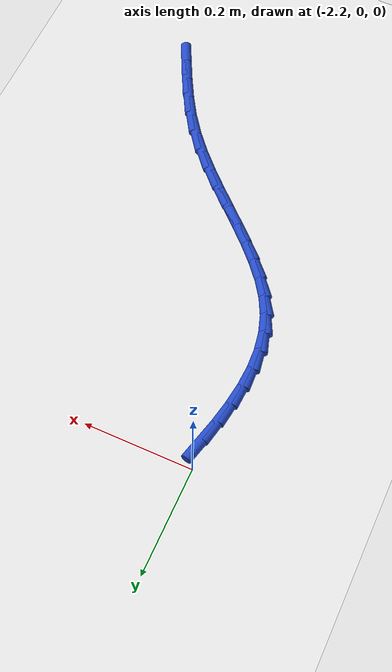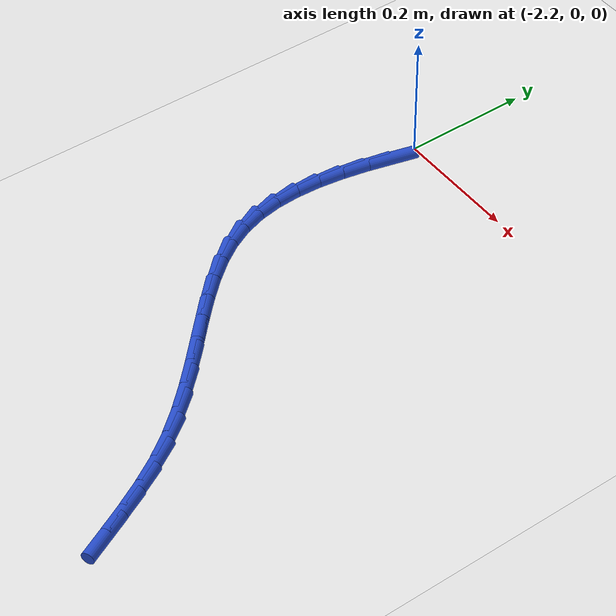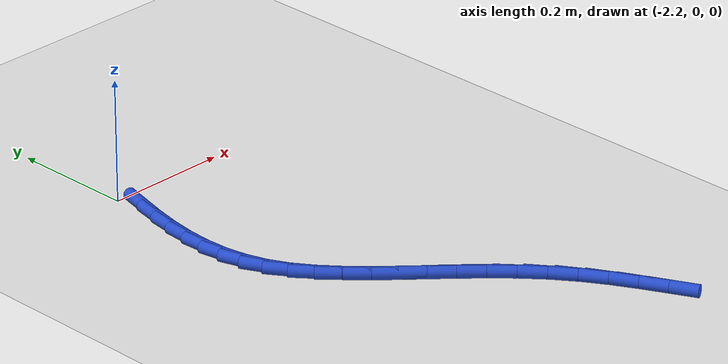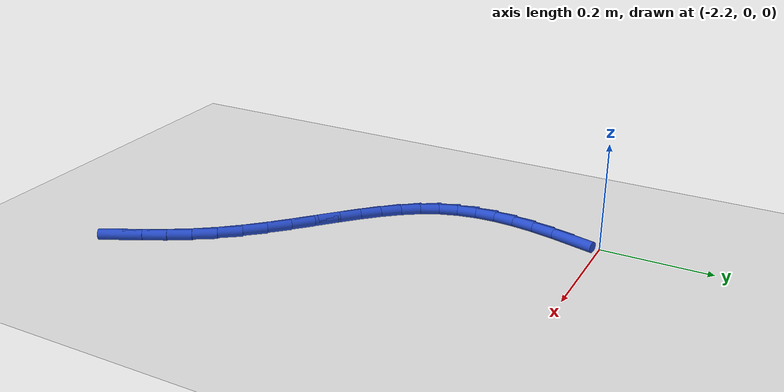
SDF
<sdf version="1.6">
 <world name="default">
  <model name="ground_plane">
   <static>1</static>
   <link name="link">
    <collision name="collision">
     <geometry><plane><normal>0 0 1</normal><size>100 100</size></plane></geometry>
     <surface><friction><ode><mu>100</mu><mu2>50</mu2></ode></friction></surface>
    </collision>
    <visual name="visual">
     <cast_shadows>0</cast_shadows>
     <geometry><plane><normal>0 0 1</normal><size>100 100</size></plane></geometry>
     <material>
      <script><uri>file://media/materials/scripts/gazebo.material</uri><name>Gazebo/WhiteGlow</name></script>
     </material>
    </visual>
   </link>
  </model>
  <model name="line">
   <link name="link_84">
    <pose>-2.194438719372233 -0.04734307229230232 0.01 0 1.57 1.3231978027596123</pose>
    <collision name="collision">
     <geometry><cylinder><radius>0.01</radius><length>0.08</length></cylinder></geometry>
    </collision>
    <visual name="visual">
     <material>
      <script><name>Gazebo/Blue</name><uri>file://media/materials/scripts/gazebo.material</uri></script>
     </material>
     <geometry><cylinder><radius>0.01</radius><length>0.08</length></cylinder></geometry>
    </visual>
   </link>
   <link name="link_85">
    <pose>-2.204924522512006 -0.08882411420764234 0.01 0 1.57 1.3742435573194094</pose>
    <collision name="collision">
     <geometry><cylinder><radius>0.01</radius><length>0.08</length></cylinder></geometry>
    </collision>
    <visual name="visual">
     <material>
      <script><name>Gazebo/Blue</name><uri>file://media/materials/scripts/gazebo.material</uri></script>
     </material>
     <geometry><cylinder><radius>0.01</radius><length>0.08</length></cylinder></geometry>
    </visual>
   </link>
   <link name="link_86">
    <pose>-2.213015938813257 -0.12945924962880215 0.01 0 1.57 1.4398386977272242</pose>
    <collision name="collision">
     <geometry><cylinder><radius>0.01</radius><length>0.08</length></cylinder></geometry>
    </collision>
    <visual name="visual">
     <material>
      <script><name>Gazebo/Blue</name><uri>file://media/materials/scripts/gazebo.material</uri></script>
     </material>
     <geometry><cylinder><radius>0.01</radius><length>0.08</length></cylinder></geometry>
    </visual>
   </link>
   <link name="link_87">
    <pose>-2.218236656657059 -0.16909679325042232 0.01 0 1.57 1.5221521603099335</pose>
    <collision name="collision">
     <geometry><cylinder><radius>0.01</radius><length>0.08</length></cylinder></geometry>
    </collision>
    <visual name="visual">
     <material>
      <script><name>Gazebo/Blue</name><uri>file://media/materials/scripts/gazebo.material</uri></script>
     </material>
     <geometry><cylinder><radius>0.01</radius><length>0.08</length></cylinder></geometry>
    </visual>
   </link>
   <link name="link_88">
    <pose>-2.220110364424489 -0.20758505976714353 0.01 0 1.57 -1.518417411636664</pose>
    <collision name="collision">
     <geometry><cylinder><radius>0.01</radius><length>0.08</length></cylinder></geometry>
    </collision>
    <visual name="visual">
     <material>
      <script><name>Gazebo/Blue</name><uri>file://media/materials/scripts/gazebo.material</uri></script>
     </material>
     <geometry><cylinder><radius>0.01</radius><length>0.08</length></cylinder></geometry>
    </visual>
   </link>
   <link name="link_89">
    <pose>-2.218160750496619 -0.2447723638736072 0.01 0 1.57 -1.3976678970668792</pose>
    <collision name="collision">
     <geometry><cylinder><radius>0.01</radius><length>0.08</length></cylinder></geometry>
    </collision>
    <visual name="visual">
     <material>
      <script><name>Gazebo/Blue</name><uri>file://media/materials/scripts/gazebo.material</uri></script>
     </material>
     <geometry><cylinder><radius>0.01</radius><length>0.08</length></cylinder></geometry>
    </visual>
   </link>
   <link name="link_90">
    <pose>-2.2119115032545253 -0.28050702026445257 0.01 0 1.57 -1.2583452974171603</pose>
    <collision name="collision">
     <geometry><cylinder><radius>0.01</radius><length>0.08</length></cylinder></geometry>
    </collision>
    <visual name="visual">
     <material>
      <script><name>Gazebo/Blue</name><uri>file://media/materials/scripts/gazebo.material</uri></script>
     </material>
     <geometry><cylinder><radius>0.01</radius><length>0.08</length></cylinder></geometry>
    </visual>
   </link>
   <link name="link_91">
    <pose>-2.2008863110792816 -0.31463734363432094 0.01 0 1.57 -1.1090080656844432</pose>
    <collision name="collision">
     <geometry><cylinder><radius>0.01</radius><length>0.08</length></cylinder></geometry>
    </collision>
    <visual name="visual">
     <material>
      <script><name>Gazebo/Blue</name><uri>file://media/materials/scripts/gazebo.material</uri></script>
     </material>
     <geometry><cylinder><radius>0.01</radius><length>0.08</length></cylinder></geometry>
    </visual>
   </link>
   <link name="link_92">
    <pose>-2.184745094654278 -0.3470703974550081 0.01 0 1.57 -0.9806862196833713</pose>
    <collision name="collision">
     <geometry><cylinder><radius>0.01</radius><length>0.08</length></cylinder></geometry>
    </collision>
    <visual name="visual">
     <material>
      <script><name>Gazebo/Blue</name><uri>file://media/materials/scripts/gazebo.material</uri></script>
     </material>
     <geometry><cylinder><radius>0.01</radius><length>0.08</length></cylinder></geometry>
    </visual>
   </link>
   <link name="link_93">
    <pose>-2.1639821437542994 -0.378073058274814 0.01 0 1.57 -0.8840804266452402</pose>
    <collision name="collision">
     <geometry><cylinder><radius>0.01</radius><length>0.08</length></cylinder></geometry>
    </collision>
    <visual name="visual">
     <material>
      <script><name>Gazebo/Blue</name><uri>file://media/materials/scripts/gazebo.material</uri></script>
     </material>
     <geometry><cylinder><radius>0.01</radius><length>0.08</length></cylinder></geometry>
    </visual>
   </link>
   <link name="link_94">
    <pose>-2.139407493090629 -0.40804836439367215 0.01 0 1.57 -0.8165775583373692</pose>
    <collision name="collision">
     <geometry><cylinder><radius>0.01</radius><length>0.08</length></cylinder></geometry>
    </collision>
    <visual name="visual">
     <material>
      <script><name>Gazebo/Blue</name><uri>file://media/materials/scripts/gazebo.material</uri></script>
     </material>
     <geometry><cylinder><radius>0.01</radius><length>0.08</length></cylinder></geometry>
    </visual>
   </link>
   <link name="link_95">
    <pose>-2.111831771129985 -0.4373996101624291 0.01 0 1.57 -0.7746053526455029</pose>
    <collision name="collision">
     <geometry><cylinder><radius>0.01</radius><length>0.08</length></cylinder></geometry>
    </collision>
    <visual name="visual">
     <material>
      <script><name>Gazebo/Blue</name><uri>file://media/materials/scripts/gazebo.material</uri></script>
     </material>
     <geometry><cylinder><radius>0.01</radius><length>0.08</length></cylinder></geometry>
    </visual>
   </link>
   <link name="link_96">
    <pose>-2.0820656063390848 -0.46653008993193296 0.01 0 1.57 -0.7550898530919175</pose>
    <collision name="collision">
     <geometry><cylinder><radius>0.01</radius><length>0.08</length></cylinder></geometry>
    </collision>
    <visual name="visual">
     <material>
      <script><name>Gazebo/Blue</name><uri>file://media/materials/scripts/gazebo.material</uri></script>
     </material>
     <geometry><cylinder><radius>0.01</radius><length>0.08</length></cylinder></geometry>
    </visual>
   </link>
   <link name="link_97">
    <pose>-2.050919627184643 -0.49584309805303084 0.01 0 1.57 -0.7559274509582421</pose>
    <collision name="collision">
     <geometry><cylinder><radius>0.01</radius><length>0.08</length></cylinder></geometry>
    </collision>
    <visual name="visual">
     <material>
      <script><name>Gazebo/Blue</name><uri>file://media/materials/scripts/gazebo.material</uri></script>
     </material>
     <geometry><cylinder><radius>0.01</radius><length>0.08</length></cylinder></geometry>
    </visual>
   </link>
   <link name="link_98">
    <pose>-2.019204462133378 -0.5257419288765707 0.01 0 1.57 -0.7760052562785669</pose>
    <collision name="collision">
     <geometry><cylinder><radius>0.01</radius><length>0.08</length></cylinder></geometry>
    </collision>
    <visual name="visual">
     <material>
      <script><name>Gazebo/Blue</name><uri>file://media/materials/scripts/gazebo.material</uri></script>
     </material>
     <geometry><cylinder><radius>0.01</radius><length>0.08</length></cylinder></geometry>
    </visual>
   </link>
   <link name="link_99">
    <pose>-1.9877307396520065 -0.5566298767534004 0.01 0 1.57 -0.815032997473821</pose>
    <collision name="collision">
     <geometry><cylinder><radius>0.01</radius><length>0.08</length></cylinder></geometry>
    </collision>
    <visual name="visual">
     <material>
      <script><name>Gazebo/Blue</name><uri>file://media/materials/scripts/gazebo.material</uri></script>
     </material>
     <geometry><cylinder><radius>0.01</radius><length>0.08</length></cylinder></geometry>
    </visual>
   </link>
   <link name="link_100">
    <pose>-1.9573090882072453 -0.5889102360343662 0.01 0 1.57 -0.8732549384425631</pose>
    <collision name="collision">
     <geometry><cylinder><radius>0.01</radius><length>0.08</length></cylinder></geometry>
    </collision>
    <visual name="visual">
     <material>
      <script><name>Gazebo/Blue</name><uri>file://media/materials/scripts/gazebo.material</uri></script>
     </material>
     <geometry><cylinder><radius>0.01</radius><length>0.08</length></cylinder></geometry>
    </visual>
   </link>
   <link name="link_101">
    <pose>-1.928750136265812 -0.6229863010703166 0.01 0 1.57 -0.9502629879741591</pose>
    <collision name="collision">
     <geometry><cylinder><radius>0.01</radius><length>0.08</length></cylinder></geometry>
    </collision>
    <visual name="visual">
     <material>
      <script><name>Gazebo/Blue</name><uri>file://media/materials/scripts/gazebo.material</uri></script>
     </material>
     <geometry><cylinder><radius>0.01</radius><length>0.08</length></cylinder></geometry>
    </visual>
   </link>
   <link name="link_102">
    <pose>-1.9028384990968161 -0.6592408306830158 0.01 0 1.57 -1.026136454618181</pose>
    <collision name="collision">
     <geometry><cylinder><radius>0.01</radius><length>0.08</length></cylinder></geometry>
    </collision>
    <visual name="visual">
     <material>
      <script><name>Gazebo/Blue</name><uri>file://media/materials/scripts/gazebo.material</uri></script>
     </material>
     <geometry><cylinder><radius>0.01</radius><length>0.08</length></cylinder></geometry>
    </visual>
   </link>
   <link name="link_103">
    <pose>-1.8796591915208285 -0.697504299981376 0.01 0 1.57 -1.0797529668504648</pose>
    <collision name="collision">
     <geometry><cylinder><radius>0.01</radius><length>0.08</length></cylinder></geometry>
    </collision>
    <visual name="visual">
     <material>
      <script><name>Gazebo/Blue</name><uri>file://media/materials/scripts/gazebo.material</uri></script>
     </material>
     <geometry><cylinder><radius>0.01</radius><length>0.08</length></cylinder></geometry>
    </visual>
   </link>
   <link name="link_104">
    <pose>-1.8585362460081596 -0.7370064438107866 0.01 0 1.57 -1.1109472515554533</pose>
    <collision name="collision">
     <geometry><cylinder><radius>0.01</radius><length>0.08</length></cylinder></geometry>
    </collision>
    <visual name="visual">
     <material>
      <script><name>Gazebo/Blue</name><uri>file://media/materials/scripts/gazebo.material</uri></script>
     </material>
     <geometry><cylinder><radius>0.01</radius><length>0.08</length></cylinder></geometry>
    </visual>
   </link>
   <link name="link_105">
    <pose>-1.838755378225234 -0.7769467486845205 0.01 0 1.57 -1.1200847967222074</pose>
    <collision name="collision">
     <geometry><cylinder><radius>0.01</radius><length>0.08</length></cylinder></geometry>
    </collision>
    <visual name="visual">
     <material>
      <script><name>Gazebo/Blue</name><uri>file://media/materials/scripts/gazebo.material</uri></script>
     </material>
     <geometry><cylinder><radius>0.01</radius><length>0.08</length></cylinder></geometry>
    </visual>
   </link>
  </model>
 </world>
</sdf>
